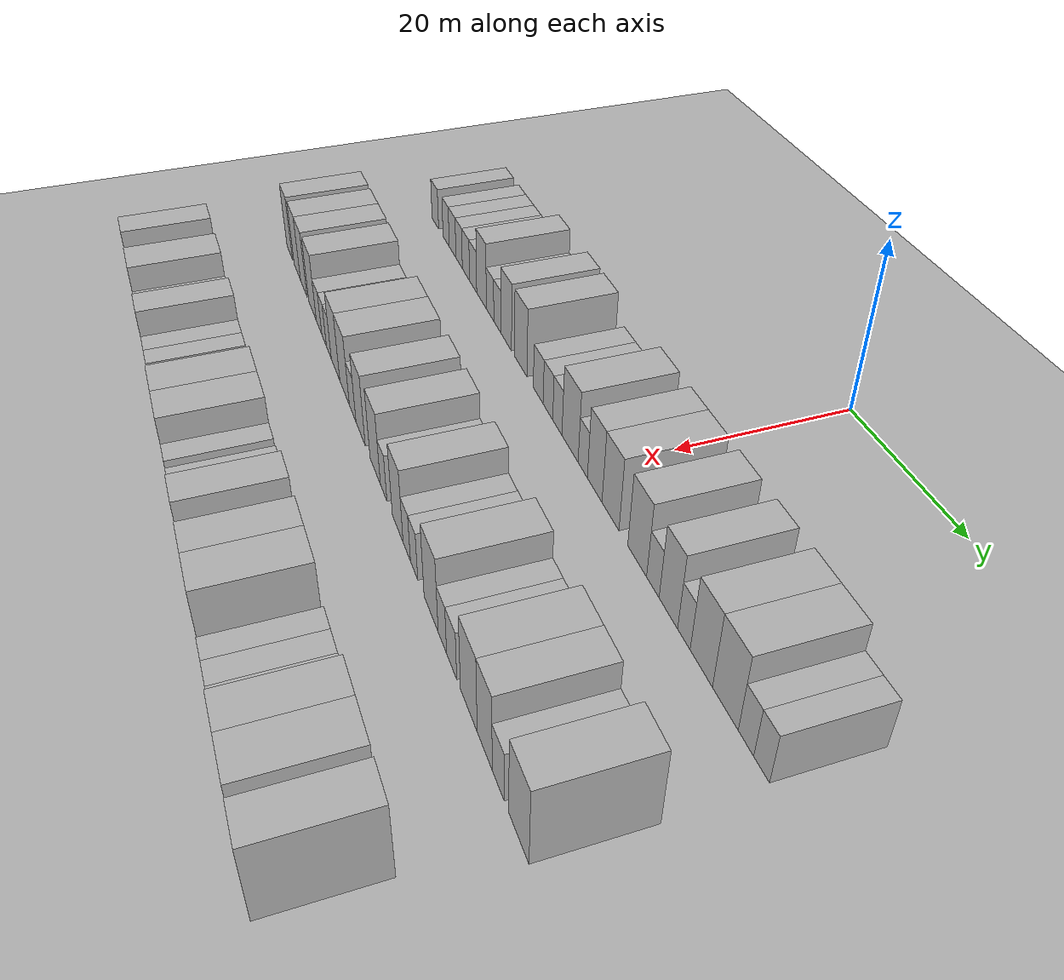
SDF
<sdf version="1.6">
 <world name="default">
  <include><name>ground_plane_1</name><uri>model://HANNAS_ground_plane</uri></include>
  <include>
   <name>ground_plane_2</name>
   <uri>model://HANNAS_ground_plane</uri>
   <pose>100 0 0  0 0 0</pose>
  </include>
  <model name="building_49">
   <static>1</static>
   <pose>25.0000 -50.4573 0 0.000000 0.000000 0.000000</pose>
   <link name="link">
    <pose>0 0 3.00 0 0 0</pose>
    <collision name="collision"><geometry><box><size>10.0000 2.9889 6.0000</size></box></geometry></collision>
    <visual name="visual">
     <cast_shadows>0</cast_shadows>
     <geometry><box><size>10.0000 2.9889 6.0000</size></box></geometry>
     <material>
      <script>
       <uri>model://HANNAS_wall/materials/scripts</uri>
       <uri>model://HANNAS_wall/materials/textures</uri>
       <name>vrc/HANNAS_wall</name>
      </script>
     </material>
    </visual>
   </link>
  </model>
  <model name="building_50">
   <static>1</static>
   <pose>25.0000 -45.6166 0 0.000000 0.000000 0.000000</pose>
   <link name="link">
    <pose>0 0 3.00 0 0 0</pose>
    <collision name="collision"><geometry><box><size>10.0000 2.6924 6.0000</size></box></geometry></collision>
    <visual name="visual">
     <cast_shadows>0</cast_shadows>
     <geometry><box><size>10.0000 2.6924 6.0000</size></box></geometry>
     <material>
      <script>
       <uri>model://HANNAS_wall/materials/scripts</uri>
       <uri>model://HANNAS_wall/materials/textures</uri>
       <name>vrc/HANNAS_wall</name>
      </script>
     </material>
    </visual>
   </link>
  </model>
  <model name="building_51">
   <static>1</static>
   <pose>25.0000 -42.8474 0 0.000000 0.000000 0.000000</pose>
   <link name="link">
    <pose>0 0 3.00 0 0 0</pose>
    <collision name="collision"><geometry><box><size>10.0000 2.8459 6.0000</size></box></geometry></collision>
    <visual name="visual">
     <cast_shadows>0</cast_shadows>
     <geometry><box><size>10.0000 2.8459 6.0000</size></box></geometry>
     <material>
      <script>
       <uri>model://HANNAS_wall/materials/scripts</uri>
       <uri>model://HANNAS_wall/materials/textures</uri>
       <name>vrc/HANNAS_wall</name>
      </script>
     </material>
    </visual>
   </link>
  </model>
  <model name="building_52">
   <static>1</static>
   <pose>25.0000 -40.1089 0 0.000000 0.000000 0.000000</pose>
   <link name="link">
    <pose>0 0 3.00 0 0 0</pose>
    <collision name="collision"><geometry><box><size>10.0000 2.6312 6.0000</size></box></geometry></collision>
    <visual name="visual">
     <cast_shadows>0</cast_shadows>
     <geometry><box><size>10.0000 2.6312 6.0000</size></box></geometry>
     <material>
      <script>
       <uri>model://HANNAS_wall/materials/scripts</uri>
       <uri>model://HANNAS_wall/materials/textures</uri>
       <name>vrc/HANNAS_wall</name>
      </script>
     </material>
    </visual>
   </link>
  </model>
  <model name="building_53">
   <static>1</static>
   <pose>25.0000 -37.3499 0 0.000000 0.000000 0.000000</pose>
   <link name="link">
    <pose>0 0 3.00 0 0 0</pose>
    <collision name="collision"><geometry><box><size>10.0000 2.8868 6.0000</size></box></geometry></collision>
    <visual name="visual">
     <cast_shadows>0</cast_shadows>
     <geometry><box><size>10.0000 2.8868 6.0000</size></box></geometry>
     <material>
      <script>
       <uri>model://HANNAS_wall/materials/scripts</uri>
       <uri>model://HANNAS_wall/materials/textures</uri>
       <name>vrc/HANNAS_wall</name>
      </script>
     </material>
    </visual>
   </link>
  </model>
  <model name="building_54">
   <static>1</static>
   <pose>25.0000 -34.5141 0 0.000000 0.000000 0.000000</pose>
   <link name="link">
    <pose>0 0 3.00 0 0 0</pose>
    <collision name="collision"><geometry><box><size>10.0000 2.7847 6.0000</size></box></geometry></collision>
    <visual name="visual">
     <cast_shadows>0</cast_shadows>
     <geometry><box><size>10.0000 2.7847 6.0000</size></box></geometry>
     <material>
      <script>
       <uri>model://HANNAS_wall/materials/scripts</uri>
       <uri>model://HANNAS_wall/materials/textures</uri>
       <name>vrc/HANNAS_wall</name>
      </script>
     </material>
    </visual>
   </link>
  </model>
  <model name="building_55">
   <static>1</static>
   <pose>25.0000 -31.3079 0 0.000000 0.000000 0.000000</pose>
   <link name="link">
    <pose>0 0 4.50 0 0 0</pose>
    <collision name="collision"><geometry><box><size>10.0000 3.6278 9.0000</size></box></geometry></collision>
    <visual name="visual">
     <cast_shadows>0</cast_shadows>
     <geometry><box><size>10.0000 3.6278 9.0000</size></box></geometry>
     <material>
      <script>
       <uri>model://HANNAS_wall/materials/scripts</uri>
       <uri>model://HANNAS_wall/materials/textures</uri>
       <name>vrc/HANNAS_wall</name>
      </script>
     </material>
    </visual>
   </link>
  </model>
  <model name="building_56">
   <static>1</static>
   <pose>25.0000 -28.1393 0 0.000000 0.000000 0.000000</pose>
   <link name="link">
    <pose>0 0 3.00 0 0 0</pose>
    <collision name="collision"><geometry><box><size>10.0000 2.7095 6.0000</size></box></geometry></collision>
    <visual name="visual">
     <cast_shadows>0</cast_shadows>
     <geometry><box><size>10.0000 2.7095 6.0000</size></box></geometry>
     <material>
      <script>
       <uri>model://HANNAS_wall/materials/scripts</uri>
       <uri>model://HANNAS_wall/materials/textures</uri>
       <name>vrc/HANNAS_wall</name>
      </script>
     </material>
    </visual>
   </link>
  </model>
  <model name="building_57">
   <static>1</static>
   <pose>25.0000 -25.5519 0 0.000000 0.000000 0.000000</pose>
   <link name="link">
    <pose>0 0 3.00 0 0 0</pose>
    <collision name="collision"><geometry><box><size>10.0000 2.4653 6.0000</size></box></geometry></collision>
    <visual name="visual">
     <cast_shadows>0</cast_shadows>
     <geometry><box><size>10.0000 2.4653 6.0000</size></box></geometry>
     <material>
      <script>
       <uri>model://HANNAS_wall/materials/scripts</uri>
       <uri>model://HANNAS_wall/materials/textures</uri>
       <name>vrc/HANNAS_wall</name>
      </script>
     </material>
    </visual>
   </link>
  </model>
  <model name="building_58">
   <static>1</static>
   <pose>25.0000 -22.4851 0 0.000000 0.000000 0.000000</pose>
   <link name="link">
    <pose>0 0 4.50 0 0 0</pose>
    <collision name="collision"><geometry><box><size>10.0000 3.6683 9.0000</size></box></geometry></collision>
    <visual name="visual">
     <cast_shadows>0</cast_shadows>
     <geometry><box><size>10.0000 3.6683 9.0000</size></box></geometry>
     <material>
      <script>
       <uri>model://HANNAS_wall/materials/scripts</uri>
       <uri>model://HANNAS_wall/materials/textures</uri>
       <name>vrc/HANNAS_wall</name>
      </script>
     </material>
    </visual>
   </link>
  </model>
  <model name="building_59">
   <static>1</static>
   <pose>25.0000 -17.6290 0 0.000000 0.000000 0.000000</pose>
   <link name="link">
    <pose>0 0 4.50 0 0 0</pose>
    <collision name="collision"><geometry><box><size>10.0000 4.0440 9.0000</size></box></geometry></collision>
    <visual name="visual">
     <cast_shadows>0</cast_shadows>
     <geometry><box><size>10.0000 4.0440 9.0000</size></box></geometry>
     <material>
      <script>
       <uri>model://HANNAS_wall/materials/scripts</uri>
       <uri>model://HANNAS_wall/materials/textures</uri>
       <name>vrc/HANNAS_wall</name>
      </script>
     </material>
    </visual>
   </link>
  </model>
  <model name="building_60">
   <static>1</static>
   <pose>25.0000 -12.1209 0 0.000000 0.000000 0.000000</pose>
   <link name="link">
    <pose>0 0 3.00 0 0 0</pose>
    <collision name="collision"><geometry><box><size>10.0000 2.9723 6.0000</size></box></geometry></collision>
    <visual name="visual">
     <cast_shadows>0</cast_shadows>
     <geometry><box><size>10.0000 2.9723 6.0000</size></box></geometry>
     <material>
      <script>
       <uri>model://HANNAS_wall/materials/scripts</uri>
       <uri>model://HANNAS_wall/materials/textures</uri>
       <name>vrc/HANNAS_wall</name>
      </script>
     </material>
    </visual>
   </link>
  </model>
  <model name="building_61">
   <static>1</static>
   <pose>25.0000 -9.2199 0 0.000000 0.000000 0.000000</pose>
   <link name="link">
    <pose>0 0 3.00 0 0 0</pose>
    <collision name="collision"><geometry><box><size>10.0000 2.8297 6.0000</size></box></geometry></collision>
    <visual name="visual">
     <cast_shadows>0</cast_shadows>
     <geometry><box><size>10.0000 2.8297 6.0000</size></box></geometry>
     <material>
      <script>
       <uri>model://HANNAS_wall/materials/scripts</uri>
       <uri>model://HANNAS_wall/materials/textures</uri>
       <name>vrc/HANNAS_wall</name>
      </script>
     </material>
    </visual>
   </link>
  </model>
  <model name="building_62">
   <static>1</static>
   <pose>25.0000 -6.4942 0 0.000000 0.000000 0.000000</pose>
   <link name="link">
    <pose>0 0 3.00 0 0 0</pose>
    <collision name="collision"><geometry><box><size>10.0000 2.6217 6.0000</size></box></geometry></collision>
    <visual name="visual">
     <cast_shadows>0</cast_shadows>
     <geometry><box><size>10.0000 2.6217 6.0000</size></box></geometry>
     <material>
      <script>
       <uri>model://HANNAS_wall/materials/scripts</uri>
       <uri>model://HANNAS_wall/materials/textures</uri>
       <name>vrc/HANNAS_wall</name>
      </script>
     </material>
    </visual>
   </link>
  </model>
  <model name="building_63">
   <static>1</static>
   <pose>25.0000 -2.9766 0 0.000000 0.000000 0.000000</pose>
   <link name="link">
    <pose>0 0 4.50 0 0 0</pose>
    <collision name="collision"><geometry><box><size>10.0000 4.4134 9.0000</size></box></geometry></collision>
    <visual name="visual">
     <cast_shadows>0</cast_shadows>
     <geometry><box><size>10.0000 4.4134 9.0000</size></box></geometry>
     <material>
      <script>
       <uri>model://HANNAS_wall/materials/scripts</uri>
       <uri>model://HANNAS_wall/materials/textures</uri>
       <name>vrc/HANNAS_wall</name>
      </script>
     </material>
    </visual>
   </link>
  </model>
  <model name="building_64">
   <static>1</static>
   <pose>25.0000 0.4351 0 0.000000 0.000000 0.000000</pose>
   <link name="link">
    <pose>0 0 3.00 0 0 0</pose>
    <collision name="collision"><geometry><box><size>10.0000 2.4101 6.0000</size></box></geometry></collision>
    <visual name="visual">
     <cast_shadows>0</cast_shadows>
     <geometry><box><size>10.0000 2.4101 6.0000</size></box></geometry>
     <material>
      <script>
       <uri>model://HANNAS_wall/materials/scripts</uri>
       <uri>model://HANNAS_wall/materials/textures</uri>
       <name>vrc/HANNAS_wall</name>
      </script>
     </material>
    </visual>
   </link>
  </model>
  <model name="building_65">
   <static>1</static>
   <pose>25.0000 3.4780 0 0.000000 0.000000 0.000000</pose>
   <link name="link">
    <pose>0 0 4.50 0 0 0</pose>
    <collision name="collision"><geometry><box><size>10.0000 3.6757 9.0000</size></box></geometry></collision>
    <visual name="visual">
     <cast_shadows>0</cast_shadows>
     <geometry><box><size>10.0000 3.6757 9.0000</size></box></geometry>
     <material>
      <script>
       <uri>model://HANNAS_wall/materials/scripts</uri>
       <uri>model://HANNAS_wall/materials/textures</uri>
       <name>vrc/HANNAS_wall</name>
      </script>
     </material>
    </visual>
   </link>
  </model>
  <model name="building_66">
   <static>1</static>
   <pose>25.0000 7.3419 0 0.000000 0.000000 0.000000</pose>
   <link name="link">
    <pose>0 0 4.50 0 0 0</pose>
    <collision name="collision"><geometry><box><size>10.0000 4.0522 9.0000</size></box></geometry></collision>
    <visual name="visual">
     <cast_shadows>0</cast_shadows>
     <geometry><box><size>10.0000 4.0522 9.0000</size></box></geometry>
     <material>
      <script>
       <uri>model://HANNAS_wall/materials/scripts</uri>
       <uri>model://HANNAS_wall/materials/textures</uri>
       <name>vrc/HANNAS_wall</name>
      </script>
     </material>
    </visual>
   </link>
  </model>
  <model name="building_67">
   <static>1</static>
   <pose>25.0000 13.4419 0 0.000000 0.000000 0.000000</pose>
   <link name="link">
    <pose>0 0 4.50 0 0 0</pose>
    <collision name="collision"><geometry><box><size>10.0000 4.1477 9.0000</size></box></geometry></collision>
    <visual name="visual">
     <cast_shadows>0</cast_shadows>
     <geometry><box><size>10.0000 4.1477 9.0000</size></box></geometry>
     <material>
      <script>
       <uri>model://HANNAS_wall/materials/scripts</uri>
       <uri>model://HANNAS_wall/materials/textures</uri>
       <name>vrc/HANNAS_wall</name>
      </script>
     </material>
    </visual>
   </link>
  </model>
  <model name="building_68">
   <static>1</static>
   <pose>25.0000 16.8241 0 0.000000 0.000000 0.000000</pose>
   <link name="link">
    <pose>0 0 3.00 0 0 0</pose>
    <collision name="collision"><geometry><box><size>10.0000 2.6167 6.0000</size></box></geometry></collision>
    <visual name="visual">
     <cast_shadows>0</cast_shadows>
     <geometry><box><size>10.0000 2.6167 6.0000</size></box></geometry>
     <material>
      <script>
       <uri>model://HANNAS_wall/materials/scripts</uri>
       <uri>model://HANNAS_wall/materials/textures</uri>
       <name>vrc/HANNAS_wall</name>
      </script>
     </material>
    </visual>
   </link>
  </model>
  <model name="building_69">
   <static>1</static>
   <pose>25.0000 19.9819 0 0.000000 0.000000 0.000000</pose>
   <link name="link">
    <pose>0 0 4.50 0 0 0</pose>
    <collision name="collision"><geometry><box><size>10.0000 3.6989 9.0000</size></box></geometry></collision>
    <visual name="visual">
     <cast_shadows>0</cast_shadows>
     <geometry><box><size>10.0000 3.6989 9.0000</size></box></geometry>
     <material>
      <script>
       <uri>model://HANNAS_wall/materials/scripts</uri>
       <uri>model://HANNAS_wall/materials/textures</uri>
       <name>vrc/HANNAS_wall</name>
      </script>
     </material>
    </visual>
   </link>
  </model>
  <model name="building_70">
   <static>1</static>
   <pose>25.0000 23.0336 0 0.000000 0.000000 0.000000</pose>
   <link name="link">
    <pose>0 0 3.00 0 0 0</pose>
    <collision name="collision"><geometry><box><size>10.0000 2.4045 6.0000</size></box></geometry></collision>
    <visual name="visual">
     <cast_shadows>0</cast_shadows>
     <geometry><box><size>10.0000 2.4045 6.0000</size></box></geometry>
     <material>
      <script>
       <uri>model://HANNAS_wall/materials/scripts</uri>
       <uri>model://HANNAS_wall/materials/textures</uri>
       <name>vrc/HANNAS_wall</name>
      </script>
     </material>
    </visual>
   </link>
  </model>
  <model name="building_71">
   <static>1</static>
   <pose>25.0000 26.2695 0 0.000000 0.000000 0.000000</pose>
   <link name="link">
    <pose>0 0 4.50 0 0 0</pose>
    <collision name="collision"><geometry><box><size>10.0000 4.0673 9.0000</size></box></geometry></collision>
    <visual name="visual">
     <cast_shadows>0</cast_shadows>
     <geometry><box><size>10.0000 4.0673 9.0000</size></box></geometry>
     <material>
      <script>
       <uri>model://HANNAS_wall/materials/scripts</uri>
       <uri>model://HANNAS_wall/materials/textures</uri>
       <name>vrc/HANNAS_wall</name>
      </script>
     </material>
    </visual>
   </link>
  </model>
  <model name="building_72">
   <static>1</static>
   <pose>25.0000 30.5044 0 0.000000 0.000000 0.000000</pose>
   <link name="link">
    <pose>0 0 4.50 0 0 0</pose>
    <collision name="collision"><geometry><box><size>10.0000 4.4026 9.0000</size></box></geometry></collision>
    <visual name="visual">
     <cast_shadows>0</cast_shadows>
     <geometry><box><size>10.0000 4.4026 9.0000</size></box></geometry>
     <material>
      <script>
       <uri>model://HANNAS_wall/materials/scripts</uri>
       <uri>model://HANNAS_wall/materials/textures</uri>
       <name>vrc/HANNAS_wall</name>
      </script>
     </material>
    </visual>
   </link>
  </model>
  <model name="building_73">
   <static>1</static>
   <pose>25.0000 33.9564 0 0.000000 0.000000 0.000000</pose>
   <link name="link">
    <pose>0 0 3.00 0 0 0</pose>
    <collision name="collision"><geometry><box><size>10.0000 2.5014 6.0000</size></box></geometry></collision>
    <visual name="visual">
     <cast_shadows>0</cast_shadows>
     <geometry><box><size>10.0000 2.5014 6.0000</size></box></geometry>
     <material>
      <script>
       <uri>model://HANNAS_wall/materials/scripts</uri>
       <uri>model://HANNAS_wall/materials/textures</uri>
       <name>vrc/HANNAS_wall</name>
      </script>
     </material>
    </visual>
   </link>
  </model>
  <model name="building_74">
   <static>1</static>
   <pose>25.0000 36.4383 0 0.000000 0.000000 0.000000</pose>
   <link name="link">
    <pose>0 0 3.00 0 0 0</pose>
    <collision name="collision"><geometry><box><size>10.0000 2.4623 6.0000</size></box></geometry></collision>
    <visual name="visual">
     <cast_shadows>0</cast_shadows>
     <geometry><box><size>10.0000 2.4623 6.0000</size></box></geometry>
     <material>
      <script>
       <uri>model://HANNAS_wall/materials/scripts</uri>
       <uri>model://HANNAS_wall/materials/textures</uri>
       <name>vrc/HANNAS_wall</name>
      </script>
     </material>
    </visual>
   </link>
  </model>
  <model name="building_169">
   <static>1</static>
   <pose>44.0000 -49.0976 0 0.000000 0.000000 0.000000</pose>
   <link name="link">
    <pose>0 0 4.50 0 0 0</pose>
    <collision name="collision"><geometry><box><size>10.0000 3.6765 9.0000</size></box></geometry></collision>
    <visual name="visual">
     <cast_shadows>0</cast_shadows>
     <geometry><box><size>10.0000 3.6765 9.0000</size></box></geometry>
     <material>
      <script>
       <uri>model://HANNAS_wall/materials/scripts</uri>
       <uri>model://HANNAS_wall/materials/textures</uri>
       <name>vrc/HANNAS_wall</name>
      </script>
     </material>
    </visual>
   </link>
  </model>
  <model name="building_170">
   <static>1</static>
   <pose>44.0000 -44.3065 0 0.000000 0.000000 0.000000</pose>
   <link name="link">
    <pose>0 0 4.50 0 0 0</pose>
    <collision name="collision"><geometry><box><size>10.0000 3.9057 9.0000</size></box></geometry></collision>
    <visual name="visual">
     <cast_shadows>0</cast_shadows>
     <geometry><box><size>10.0000 3.9057 9.0000</size></box></geometry>
     <material>
      <script>
       <uri>model://HANNAS_wall/materials/scripts</uri>
       <uri>model://HANNAS_wall/materials/textures</uri>
       <name>vrc/HANNAS_wall</name>
      </script>
     </material>
    </visual>
   </link>
  </model>
  <model name="building_171">
   <static>1</static>
   <pose>44.0000 -40.4272 0 0.000000 0.000000 0.000000</pose>
   <link name="link">
    <pose>0 0 4.50 0 0 0</pose>
    <collision name="collision"><geometry><box><size>10.0000 3.8528 9.0000</size></box></geometry></collision>
    <visual name="visual">
     <cast_shadows>0</cast_shadows>
     <geometry><box><size>10.0000 3.8528 9.0000</size></box></geometry>
     <material>
      <script>
       <uri>model://HANNAS_wall/materials/scripts</uri>
       <uri>model://HANNAS_wall/materials/textures</uri>
       <name>vrc/HANNAS_wall</name>
      </script>
     </material>
    </visual>
   </link>
  </model>
  <model name="building_172">
   <static>1</static>
   <pose>44.0000 -35.3780 0 0.000000 0.000000 0.000000</pose>
   <link name="link">
    <pose>0 0 4.50 0 0 0</pose>
    <collision name="collision"><geometry><box><size>10.0000 4.2457 9.0000</size></box></geometry></collision>
    <visual name="visual">
     <cast_shadows>0</cast_shadows>
     <geometry><box><size>10.0000 4.2457 9.0000</size></box></geometry>
     <material>
      <script>
       <uri>model://HANNAS_wall/materials/scripts</uri>
       <uri>model://HANNAS_wall/materials/textures</uri>
       <name>vrc/HANNAS_wall</name>
      </script>
     </material>
    </visual>
   </link>
  </model>
  <model name="building_173">
   <static>1</static>
   <pose>44.0000 -31.7881 0 0.000000 0.000000 0.000000</pose>
   <link name="link">
    <pose>0 0 3.00 0 0 0</pose>
    <collision name="collision"><geometry><box><size>10.0000 2.9340 6.0000</size></box></geometry></collision>
    <visual name="visual">
     <cast_shadows>0</cast_shadows>
     <geometry><box><size>10.0000 2.9340 6.0000</size></box></geometry>
     <material>
      <script>
       <uri>model://HANNAS_wall/materials/scripts</uri>
       <uri>model://HANNAS_wall/materials/textures</uri>
       <name>vrc/HANNAS_wall</name>
      </script>
     </material>
    </visual>
   </link>
  </model>
  <model name="building_174">
   <static>1</static>
   <pose>44.0000 -29.1124 0 0.000000 0.000000 0.000000</pose>
   <link name="link">
    <pose>0 0 3.00 0 0 0</pose>
    <collision name="collision"><geometry><box><size>10.0000 2.4173 6.0000</size></box></geometry></collision>
    <visual name="visual">
     <cast_shadows>0</cast_shadows>
     <geometry><box><size>10.0000 2.4173 6.0000</size></box></geometry>
     <material>
      <script>
       <uri>model://HANNAS_wall/materials/scripts</uri>
       <uri>model://HANNAS_wall/materials/textures</uri>
       <name>vrc/HANNAS_wall</name>
      </script>
     </material>
    </visual>
   </link>
  </model>
  <model name="building_175">
   <static>1</static>
   <pose>44.0000 -26.6529 0 0.000000 0.000000 0.000000</pose>
   <link name="link">
    <pose>0 0 3.00 0 0 0</pose>
    <collision name="collision"><geometry><box><size>10.0000 2.5016 6.0000</size></box></geometry></collision>
    <visual name="visual">
     <cast_shadows>0</cast_shadows>
     <geometry><box><size>10.0000 2.5016 6.0000</size></box></geometry>
     <material>
      <script>
       <uri>model://HANNAS_wall/materials/scripts</uri>
       <uri>model://HANNAS_wall/materials/textures</uri>
       <name>vrc/HANNAS_wall</name>
      </script>
     </material>
    </visual>
   </link>
  </model>
  <model name="building_176">
   <static>1</static>
   <pose>44.0000 -23.3039 0 0.000000 0.000000 0.000000</pose>
   <link name="link">
    <pose>0 0 4.50 0 0 0</pose>
    <collision name="collision"><geometry><box><size>10.0000 4.1965 9.0000</size></box></geometry></collision>
    <visual name="visual">
     <cast_shadows>0</cast_shadows>
     <geometry><box><size>10.0000 4.1965 9.0000</size></box></geometry>
     <material>
      <script>
       <uri>model://HANNAS_wall/materials/scripts</uri>
       <uri>model://HANNAS_wall/materials/textures</uri>
       <name>vrc/HANNAS_wall</name>
      </script>
     </material>
    </visual>
   </link>
  </model>
  <model name="building_177">
   <static>1</static>
   <pose>44.0000 -18.9837 0 0.000000 0.000000 0.000000</pose>
   <link name="link">
    <pose>0 0 4.50 0 0 0</pose>
    <collision name="collision"><geometry><box><size>10.0000 4.4437 9.0000</size></box></geometry></collision>
    <visual name="visual">
     <cast_shadows>0</cast_shadows>
     <geometry><box><size>10.0000 4.4437 9.0000</size></box></geometry>
     <material>
      <script>
       <uri>model://HANNAS_wall/materials/scripts</uri>
       <uri>model://HANNAS_wall/materials/textures</uri>
       <name>vrc/HANNAS_wall</name>
      </script>
     </material>
    </visual>
   </link>
  </model>
  <model name="building_178">
   <static>1</static>
   <pose>44.0000 -15.2755 0 0.000000 0.000000 0.000000</pose>
   <link name="link">
    <pose>0 0 3.00 0 0 0</pose>
    <collision name="collision"><geometry><box><size>10.0000 2.9728 6.0000</size></box></geometry></collision>
    <visual name="visual">
     <cast_shadows>0</cast_shadows>
     <geometry><box><size>10.0000 2.9728 6.0000</size></box></geometry>
     <material>
      <script>
       <uri>model://HANNAS_wall/materials/scripts</uri>
       <uri>model://HANNAS_wall/materials/textures</uri>
       <name>vrc/HANNAS_wall</name>
      </script>
     </material>
    </visual>
   </link>
  </model>
  <model name="building_179">
   <static>1</static>
   <pose>44.0000 -11.8035 0 0.000000 0.000000 0.000000</pose>
   <link name="link">
    <pose>0 0 4.50 0 0 0</pose>
    <collision name="collision"><geometry><box><size>10.0000 3.9712 9.0000</size></box></geometry></collision>
    <visual name="visual">
     <cast_shadows>0</cast_shadows>
     <geometry><box><size>10.0000 3.9712 9.0000</size></box></geometry>
     <material>
      <script>
       <uri>model://HANNAS_wall/materials/scripts</uri>
       <uri>model://HANNAS_wall/materials/textures</uri>
       <name>vrc/HANNAS_wall</name>
      </script>
     </material>
    </visual>
   </link>
  </model>
  <model name="building_180">
   <static>1</static>
   <pose>44.0000 -5.7578 0 0.000000 0.000000 0.000000</pose>
   <link name="link">
    <pose>0 0 4.50 0 0 0</pose>
    <collision name="collision"><geometry><box><size>10.0000 4.1202 9.0000</size></box></geometry></collision>
    <visual name="visual">
     <cast_shadows>0</cast_shadows>
     <geometry><box><size>10.0000 4.1202 9.0000</size></box></geometry>
     <material>
      <script>
       <uri>model://HANNAS_wall/materials/scripts</uri>
       <uri>model://HANNAS_wall/materials/textures</uri>
       <name>vrc/HANNAS_wall</name>
      </script>
     </material>
    </visual>
   </link>
  </model>
  <model name="building_181">
   <static>1</static>
   <pose>44.0000 -2.4677 0 0.000000 0.000000 0.000000</pose>
   <link name="link">
    <pose>0 0 3.00 0 0 0</pose>
    <collision name="collision"><geometry><box><size>10.0000 2.4599 6.0000</size></box></geometry></collision>
    <visual name="visual">
     <cast_shadows>0</cast_shadows>
     <geometry><box><size>10.0000 2.4599 6.0000</size></box></geometry>
     <material>
      <script>
       <uri>model://HANNAS_wall/materials/scripts</uri>
       <uri>model://HANNAS_wall/materials/textures</uri>
       <name>vrc/HANNAS_wall</name>
      </script>
     </material>
    </visual>
   </link>
  </model>
  <model name="building_182">
   <static>1</static>
   <pose>44.0000 2.6746 0 0.000000 0.000000 0.000000</pose>
   <link name="link">
    <pose>0 0 4.50 0 0 0</pose>
    <collision name="collision"><geometry><box><size>10.0000 3.8248 9.0000</size></box></geometry></collision>
    <visual name="visual">
     <cast_shadows>0</cast_shadows>
     <geometry><box><size>10.0000 3.8248 9.0000</size></box></geometry>
     <material>
      <script>
       <uri>model://HANNAS_wall/materials/scripts</uri>
       <uri>model://HANNAS_wall/materials/textures</uri>
       <name>vrc/HANNAS_wall</name>
      </script>
     </material>
    </visual>
   </link>
  </model>
  <model name="building_183">
   <static>1</static>
   <pose>44.0000 5.8432 0 0.000000 0.000000 0.000000</pose>
   <link name="link">
    <pose>0 0 3.00 0 0 0</pose>
    <collision name="collision"><geometry><box><size>10.0000 2.5123 6.0000</size></box></geometry></collision>
    <visual name="visual">
     <cast_shadows>0</cast_shadows>
     <geometry><box><size>10.0000 2.5123 6.0000</size></box></geometry>
     <material>
      <script>
       <uri>model://HANNAS_wall/materials/scripts</uri>
       <uri>model://HANNAS_wall/materials/textures</uri>
       <name>vrc/HANNAS_wall</name>
      </script>
     </material>
    </visual>
   </link>
  </model>
  <model name="building_184">
   <static>1</static>
   <pose>44.0000 8.3111 0 0.000000 0.000000 0.000000</pose>
   <link name="link">
    <pose>0 0 3.00 0 0 0</pose>
    <collision name="collision"><geometry><box><size>10.0000 2.4236 6.0000</size></box></geometry></collision>
    <visual name="visual">
     <cast_shadows>0</cast_shadows>
     <geometry><box><size>10.0000 2.4236 6.0000</size></box></geometry>
     <material>
      <script>
       <uri>model://HANNAS_wall/materials/scripts</uri>
       <uri>model://HANNAS_wall/materials/textures</uri>
       <name>vrc/HANNAS_wall</name>
      </script>
     </material>
    </visual>
   </link>
  </model>
  <model name="building_185">
   <static>1</static>
   <pose>44.0000 13.6751 0 0.000000 0.000000 0.000000</pose>
   <link name="link">
    <pose>0 0 4.50 0 0 0</pose>
    <collision name="collision"><geometry><box><size>10.0000 4.3044 9.0000</size></box></geometry></collision>
    <visual name="visual">
     <cast_shadows>0</cast_shadows>
     <geometry><box><size>10.0000 4.3044 9.0000</size></box></geometry>
     <material>
      <script>
       <uri>model://HANNAS_wall/materials/scripts</uri>
       <uri>model://HANNAS_wall/materials/textures</uri>
       <name>vrc/HANNAS_wall</name>
      </script>
     </material>
    </visual>
   </link>
  </model>
  <model name="building_186">
   <static>1</static>
   <pose>44.0000 17.0496 0 0.000000 0.000000 0.000000</pose>
   <link name="link">
    <pose>0 0 3.00 0 0 0</pose>
    <collision name="collision"><geometry><box><size>10.0000 2.4447 6.0000</size></box></geometry></collision>
    <visual name="visual">
     <cast_shadows>0</cast_shadows>
     <geometry><box><size>10.0000 2.4447 6.0000</size></box></geometry>
     <material>
      <script>
       <uri>model://HANNAS_wall/materials/scripts</uri>
       <uri>model://HANNAS_wall/materials/textures</uri>
       <name>vrc/HANNAS_wall</name>
      </script>
     </material>
    </visual>
   </link>
  </model>
  <model name="building_187">
   <static>1</static>
   <pose>44.0000 19.6888 0 0.000000 0.000000 0.000000</pose>
   <link name="link">
    <pose>0 0 3.00 0 0 0</pose>
    <collision name="collision"><geometry><box><size>10.0000 2.8337 6.0000</size></box></geometry></collision>
    <visual name="visual">
     <cast_shadows>0</cast_shadows>
     <geometry><box><size>10.0000 2.8337 6.0000</size></box></geometry>
     <material>
      <script>
       <uri>model://HANNAS_wall/materials/scripts</uri>
       <uri>model://HANNAS_wall/materials/textures</uri>
       <name>vrc/HANNAS_wall</name>
      </script>
     </material>
    </visual>
   </link>
  </model>
  <model name="building_188">
   <static>1</static>
   <pose>44.0000 24.2760 0 0.000000 0.000000 0.000000</pose>
   <link name="link">
    <pose>0 0 4.50 0 0 0</pose>
    <collision name="collision"><geometry><box><size>10.0000 4.3407 9.0000</size></box></geometry></collision>
    <visual name="visual">
     <cast_shadows>0</cast_shadows>
     <geometry><box><size>10.0000 4.3407 9.0000</size></box></geometry>
     <material>
      <script>
       <uri>model://HANNAS_wall/materials/scripts</uri>
       <uri>model://HANNAS_wall/materials/textures</uri>
       <name>vrc/HANNAS_wall</name>
      </script>
     </material>
    </visual>
   </link>
  </model>
  <model name="building_189">
   <static>1</static>
   <pose>44.0000 28.2783 0 0.000000 0.000000 0.000000</pose>
   <link name="link">
    <pose>0 0 4.50 0 0 0</pose>
    <collision name="collision"><geometry><box><size>10.0000 3.6640 9.0000</size></box></geometry></collision>
    <visual name="visual">
     <cast_shadows>0</cast_shadows>
     <geometry><box><size>10.0000 3.6640 9.0000</size></box></geometry>
     <material>
      <script>
       <uri>model://HANNAS_wall/materials/scripts</uri>
       <uri>model://HANNAS_wall/materials/textures</uri>
       <name>vrc/HANNAS_wall</name>
      </script>
     </material>
    </visual>
   </link>
  </model>
  <model name="building_190">
   <static>1</static>
   <pose>44.0000 31.4995 0 0.000000 0.000000 0.000000</pose>
   <link name="link">
    <pose>0 0 3.00 0 0 0</pose>
    <collision name="collision"><geometry><box><size>10.0000 2.7785 6.0000</size></box></geometry></collision>
    <visual name="visual">
     <cast_shadows>0</cast_shadows>
     <geometry><box><size>10.0000 2.7785 6.0000</size></box></geometry>
     <material>
      <script>
       <uri>model://HANNAS_wall/materials/scripts</uri>
       <uri>model://HANNAS_wall/materials/textures</uri>
       <name>vrc/HANNAS_wall</name>
      </script>
     </material>
    </visual>
   </link>
  </model>
  <model name="building_191">
   <static>1</static>
   <pose>44.0000 36.0574 0 0.000000 0.000000 0.000000</pose>
   <link name="link">
    <pose>0 0 4.50 0 0 0</pose>
    <collision name="collision"><geometry><box><size>10.0000 4.3373 9.0000</size></box></geometry></collision>
    <visual name="visual">
     <cast_shadows>0</cast_shadows>
     <geometry><box><size>10.0000 4.3373 9.0000</size></box></geometry>
     <material>
      <script>
       <uri>model://HANNAS_wall/materials/scripts</uri>
       <uri>model://HANNAS_wall/materials/textures</uri>
       <name>vrc/HANNAS_wall</name>
      </script>
     </material>
    </visual>
   </link>
  </model>
  <model name="building_290">
   <static>1</static>
   <pose>63.0000 -46.8684 0 0.000000 0.000000 0.000000</pose>
   <link name="link">
    <pose>0 0 4.50 0 0 0</pose>
    <collision name="collision"><geometry><box><size>10.0000 3.6372 9.0000</size></box></geometry></collision>
    <visual name="visual">
     <cast_shadows>0</cast_shadows>
     <geometry><box><size>10.0000 3.6372 9.0000</size></box></geometry>
     <material>
      <script>
       <uri>model://HANNAS_wall/materials/scripts</uri>
       <uri>model://HANNAS_wall/materials/textures</uri>
       <name>vrc/HANNAS_wall</name>
      </script>
     </material>
    </visual>
   </link>
  </model>
  <model name="building_291">
   <static>1</static>
   <pose>63.0000 -42.7418 0 0.000000 0.000000 0.000000</pose>
   <link name="link">
    <pose>0 0 3.00 0 0 0</pose>
    <collision name="collision"><geometry><box><size>10.0000 2.6159 6.0000</size></box></geometry></collision>
    <visual name="visual">
     <cast_shadows>0</cast_shadows>
     <geometry><box><size>10.0000 2.6159 6.0000</size></box></geometry>
     <material>
      <script>
       <uri>model://HANNAS_wall/materials/scripts</uri>
       <uri>model://HANNAS_wall/materials/textures</uri>
       <name>vrc/HANNAS_wall</name>
      </script>
     </material>
    </visual>
   </link>
  </model>
  <model name="building_292">
   <static>1</static>
   <pose>63.0000 -39.1865 0 0.000000 0.000000 0.000000</pose>
   <link name="link">
    <pose>0 0 4.50 0 0 0</pose>
    <collision name="collision"><geometry><box><size>10.0000 4.4947 9.0000</size></box></geometry></collision>
    <visual name="visual">
     <cast_shadows>0</cast_shadows>
     <geometry><box><size>10.0000 4.4947 9.0000</size></box></geometry>
     <material>
      <script>
       <uri>model://HANNAS_wall/materials/scripts</uri>
       <uri>model://HANNAS_wall/materials/textures</uri>
       <name>vrc/HANNAS_wall</name>
      </script>
     </material>
    </visual>
   </link>
  </model>
  <model name="building_293">
   <static>1</static>
   <pose>63.0000 -35.4563 0 0.000000 0.000000 0.000000</pose>
   <link name="link">
    <pose>0 0 3.00 0 0 0</pose>
    <collision name="collision"><geometry><box><size>10.0000 2.9656 6.0000</size></box></geometry></collision>
    <visual name="visual">
     <cast_shadows>0</cast_shadows>
     <geometry><box><size>10.0000 2.9656 6.0000</size></box></geometry>
     <material>
      <script>
       <uri>model://HANNAS_wall/materials/scripts</uri>
       <uri>model://HANNAS_wall/materials/textures</uri>
       <name>vrc/HANNAS_wall</name>
      </script>
     </material>
    </visual>
   </link>
  </model>
  <model name="building_294">
   <static>1</static>
   <pose>63.0000 -32.7272 0 0.000000 0.000000 0.000000</pose>
   <link name="link">
    <pose>0 0 3.00 0 0 0</pose>
    <collision name="collision"><geometry><box><size>10.0000 2.4927 6.0000</size></box></geometry></collision>
    <visual name="visual">
     <cast_shadows>0</cast_shadows>
     <geometry><box><size>10.0000 2.4927 6.0000</size></box></geometry>
     <material>
      <script>
       <uri>model://HANNAS_wall/materials/scripts</uri>
       <uri>model://HANNAS_wall/materials/textures</uri>
       <name>vrc/HANNAS_wall</name>
      </script>
     </material>
    </visual>
   </link>
  </model>
  <model name="building_295">
   <static>1</static>
   <pose>63.0000 -29.6687 0 0.000000 0.000000 0.000000</pose>
   <link name="link">
    <pose>0 0 4.50 0 0 0</pose>
    <collision name="collision"><geometry><box><size>10.0000 3.6243 9.0000</size></box></geometry></collision>
    <visual name="visual">
     <cast_shadows>0</cast_shadows>
     <geometry><box><size>10.0000 3.6243 9.0000</size></box></geometry>
     <material>
      <script>
       <uri>model://HANNAS_wall/materials/scripts</uri>
       <uri>model://HANNAS_wall/materials/textures</uri>
       <name>vrc/HANNAS_wall</name>
      </script>
     </material>
    </visual>
   </link>
  </model>
  <model name="building_296">
   <static>1</static>
   <pose>63.0000 -26.5720 0 0.000000 0.000000 0.000000</pose>
   <link name="link">
    <pose>0 0 3.00 0 0 0</pose>
    <collision name="collision"><geometry><box><size>10.0000 2.5692 6.0000</size></box></geometry></collision>
    <visual name="visual">
     <cast_shadows>0</cast_shadows>
     <geometry><box><size>10.0000 2.5692 6.0000</size></box></geometry>
     <material>
      <script>
       <uri>model://HANNAS_wall/materials/scripts</uri>
       <uri>model://HANNAS_wall/materials/textures</uri>
       <name>vrc/HANNAS_wall</name>
      </script>
     </material>
    </visual>
   </link>
  </model>
  <model name="building_297">
   <static>1</static>
   <pose>63.0000 -24.0478 0 0.000000 0.000000 0.000000</pose>
   <link name="link">
    <pose>0 0 3.00 0 0 0</pose>
    <collision name="collision"><geometry><box><size>10.0000 2.4790 6.0000</size></box></geometry></collision>
    <visual name="visual">
     <cast_shadows>0</cast_shadows>
     <geometry><box><size>10.0000 2.4790 6.0000</size></box></geometry>
     <material>
      <script>
       <uri>model://HANNAS_wall/materials/scripts</uri>
       <uri>model://HANNAS_wall/materials/textures</uri>
       <name>vrc/HANNAS_wall</name>
      </script>
     </material>
    </visual>
   </link>
  </model>
  <model name="building_298">
   <static>1</static>
   <pose>63.0000 -19.4586 0 0.000000 0.000000 0.000000</pose>
   <link name="link">
    <pose>0 0 3.00 0 0 0</pose>
    <collision name="collision"><geometry><box><size>10.0000 2.6995 6.0000</size></box></geometry></collision>
    <visual name="visual">
     <cast_shadows>0</cast_shadows>
     <geometry><box><size>10.0000 2.6995 6.0000</size></box></geometry>
     <material>
      <script>
       <uri>model://HANNAS_wall/materials/scripts</uri>
       <uri>model://HANNAS_wall/materials/textures</uri>
       <name>vrc/HANNAS_wall</name>
      </script>
     </material>
    </visual>
   </link>
  </model>
  <model name="building_299">
   <static>1</static>
   <pose>63.0000 -15.9467 0 0.000000 0.000000 0.000000</pose>
   <link name="link">
    <pose>0 0 4.50 0 0 0</pose>
    <collision name="collision"><geometry><box><size>10.0000 4.3241 9.0000</size></box></geometry></collision>
    <visual name="visual">
     <cast_shadows>0</cast_shadows>
     <geometry><box><size>10.0000 4.3241 9.0000</size></box></geometry>
     <material>
      <script>
       <uri>model://HANNAS_wall/materials/scripts</uri>
       <uri>model://HANNAS_wall/materials/textures</uri>
       <name>vrc/HANNAS_wall</name>
      </script>
     </material>
    </visual>
   </link>
  </model>
  <model name="building_300">
   <static>1</static>
   <pose>63.0000 -11.6164 0 0.000000 0.000000 0.000000</pose>
   <link name="link">
    <pose>0 0 4.50 0 0 0</pose>
    <collision name="collision"><geometry><box><size>10.0000 4.3367 9.0000</size></box></geometry></collision>
    <visual name="visual">
     <cast_shadows>0</cast_shadows>
     <geometry><box><size>10.0000 4.3367 9.0000</size></box></geometry>
     <material>
      <script>
       <uri>model://HANNAS_wall/materials/scripts</uri>
       <uri>model://HANNAS_wall/materials/textures</uri>
       <name>vrc/HANNAS_wall</name>
      </script>
     </material>
    </visual>
   </link>
  </model>
  <model name="building_301">
   <static>1</static>
   <pose>63.0000 -8.1702 0 0.000000 0.000000 0.000000</pose>
   <link name="link">
    <pose>0 0 3.00 0 0 0</pose>
    <collision name="collision"><geometry><box><size>10.0000 2.5557 6.0000</size></box></geometry></collision>
    <visual name="visual">
     <cast_shadows>0</cast_shadows>
     <geometry><box><size>10.0000 2.5557 6.0000</size></box></geometry>
     <material>
      <script>
       <uri>model://HANNAS_wall/materials/scripts</uri>
       <uri>model://HANNAS_wall/materials/textures</uri>
       <name>vrc/HANNAS_wall</name>
      </script>
     </material>
    </visual>
   </link>
  </model>
  <model name="building_302">
   <static>1</static>
   <pose>63.0000 -4.6008 0 0.000000 0.000000 0.000000</pose>
   <link name="link">
    <pose>0 0 3.00 0 0 0</pose>
    <collision name="collision"><geometry><box><size>10.0000 2.5830 6.0000</size></box></geometry></collision>
    <visual name="visual">
     <cast_shadows>0</cast_shadows>
     <geometry><box><size>10.0000 2.5830 6.0000</size></box></geometry>
     <material>
      <script>
       <uri>model://HANNAS_wall/materials/scripts</uri>
       <uri>model://HANNAS_wall/materials/textures</uri>
       <name>vrc/HANNAS_wall</name>
      </script>
     </material>
    </visual>
   </link>
  </model>
  <model name="building_303">
   <static>1</static>
   <pose>63.0000 0.5514 0 0.000000 0.000000 0.000000</pose>
   <link name="link">
    <pose>0 0 4.50 0 0 0</pose>
    <collision name="collision"><geometry><box><size>10.0000 3.7215 9.0000</size></box></geometry></collision>
    <visual name="visual">
     <cast_shadows>0</cast_shadows>
     <geometry><box><size>10.0000 3.7215 9.0000</size></box></geometry>
     <material>
      <script>
       <uri>model://HANNAS_wall/materials/scripts</uri>
       <uri>model://HANNAS_wall/materials/textures</uri>
       <name>vrc/HANNAS_wall</name>
      </script>
     </material>
    </visual>
   </link>
  </model>
  <model name="building_304">
   <static>1</static>
   <pose>63.0000 3.6553 0 0.000000 0.000000 0.000000</pose>
   <link name="link">
    <pose>0 0 3.00 0 0 0</pose>
    <collision name="collision"><geometry><box><size>10.0000 2.4863 6.0000</size></box></geometry></collision>
    <visual name="visual">
     <cast_shadows>0</cast_shadows>
     <geometry><box><size>10.0000 2.4863 6.0000</size></box></geometry>
     <material>
      <script>
       <uri>model://HANNAS_wall/materials/scripts</uri>
       <uri>model://HANNAS_wall/materials/textures</uri>
       <name>vrc/HANNAS_wall</name>
      </script>
     </material>
    </visual>
   </link>
  </model>
  <model name="building_305">
   <static>1</static>
   <pose>63.0000 6.7823 0 0.000000 0.000000 0.000000</pose>
   <link name="link">
    <pose>0 0 4.50 0 0 0</pose>
    <collision name="collision"><geometry><box><size>10.0000 3.7676 9.0000</size></box></geometry></collision>
    <visual name="visual">
     <cast_shadows>0</cast_shadows>
     <geometry><box><size>10.0000 3.7676 9.0000</size></box></geometry>
     <material>
      <script>
       <uri>model://HANNAS_wall/materials/scripts</uri>
       <uri>model://HANNAS_wall/materials/textures</uri>
       <name>vrc/HANNAS_wall</name>
      </script>
     </material>
    </visual>
   </link>
  </model>
  <model name="building_306">
   <static>1</static>
   <pose>63.0000 10.8951 0 0.000000 0.000000 0.000000</pose>
   <link name="link">
    <pose>0 0 4.50 0 0 0</pose>
    <collision name="collision"><geometry><box><size>10.0000 4.4582 9.0000</size></box></geometry></collision>
    <visual name="visual">
     <cast_shadows>0</cast_shadows>
     <geometry><box><size>10.0000 4.4582 9.0000</size></box></geometry>
     <material>
      <script>
       <uri>model://HANNAS_wall/materials/scripts</uri>
       <uri>model://HANNAS_wall/materials/textures</uri>
       <name>vrc/HANNAS_wall</name>
      </script>
     </material>
    </visual>
   </link>
  </model>
  <model name="building_307">
   <static>1</static>
   <pose>63.0000 16.3480 0 0.000000 0.000000 0.000000</pose>
   <link name="link">
    <pose>0 0 3.00 0 0 0</pose>
    <collision name="collision"><geometry><box><size>10.0000 2.4475 6.0000</size></box></geometry></collision>
    <visual name="visual">
     <cast_shadows>0</cast_shadows>
     <geometry><box><size>10.0000 2.4475 6.0000</size></box></geometry>
     <material>
      <script>
       <uri>model://HANNAS_wall/materials/scripts</uri>
       <uri>model://HANNAS_wall/materials/textures</uri>
       <name>vrc/HANNAS_wall</name>
      </script>
     </material>
    </visual>
   </link>
  </model>
  <model name="building_308">
   <static>1</static>
   <pose>63.0000 18.8519 0 0.000000 0.000000 0.000000</pose>
   <link name="link">
    <pose>0 0 3.00 0 0 0</pose>
    <collision name="collision"><geometry><box><size>10.0000 2.5604 6.0000</size></box></geometry></collision>
    <visual name="visual">
     <cast_shadows>0</cast_shadows>
     <geometry><box><size>10.0000 2.5604 6.0000</size></box></geometry>
     <material>
      <script>
       <uri>model://HANNAS_wall/materials/scripts</uri>
       <uri>model://HANNAS_wall/materials/textures</uri>
       <name>vrc/HANNAS_wall</name>
      </script>
     </material>
    </visual>
   </link>
  </model>
  <model name="building_309">
   <static>1</static>
   <pose>63.0000 21.5682 0 0.000000 0.000000 0.000000</pose>
   <link name="link">
    <pose>0 0 3.00 0 0 0</pose>
    <collision name="collision"><geometry><box><size>10.0000 2.8722 6.0000</size></box></geometry></collision>
    <visual name="visual">
     <cast_shadows>0</cast_shadows>
     <geometry><box><size>10.0000 2.8722 6.0000</size></box></geometry>
     <material>
      <script>
       <uri>model://HANNAS_wall/materials/scripts</uri>
       <uri>model://HANNAS_wall/materials/textures</uri>
       <name>vrc/HANNAS_wall</name>
      </script>
     </material>
    </visual>
   </link>
  </model>
  <model name="building_310">
   <static>1</static>
   <pose>63.0000 24.9479 0 0.000000 0.000000 0.000000</pose>
   <link name="link">
    <pose>0 0 4.50 0 0 0</pose>
    <collision name="collision"><geometry><box><size>10.0000 3.8871 9.0000</size></box></geometry></collision>
    <visual name="visual">
     <cast_shadows>0</cast_shadows>
     <geometry><box><size>10.0000 3.8871 9.0000</size></box></geometry>
     <material>
      <script>
       <uri>model://HANNAS_wall/materials/scripts</uri>
       <uri>model://HANNAS_wall/materials/textures</uri>
       <name>vrc/HANNAS_wall</name>
      </script>
     </material>
    </visual>
   </link>
  </model>
  <model name="building_311">
   <static>1</static>
   <pose>63.0000 29.1066 0 0.000000 0.000000 0.000000</pose>
   <link name="link">
    <pose>0 0 4.50 0 0 0</pose>
    <collision name="collision"><geometry><box><size>10.0000 4.4303 9.0000</size></box></geometry></collision>
    <visual name="visual">
     <cast_shadows>0</cast_shadows>
     <geometry><box><size>10.0000 4.4303 9.0000</size></box></geometry>
     <material>
      <script>
       <uri>model://HANNAS_wall/materials/scripts</uri>
       <uri>model://HANNAS_wall/materials/textures</uri>
       <name>vrc/HANNAS_wall</name>
      </script>
     </material>
    </visual>
   </link>
  </model>
  <model name="building_312">
   <static>1</static>
   <pose>63.0000 34.2825 0 0.000000 0.000000 0.000000</pose>
   <link name="link">
    <pose>0 0 4.50 0 0 0</pose>
    <collision name="collision"><geometry><box><size>10.0000 3.9216 9.0000</size></box></geometry></collision>
    <visual name="visual">
     <cast_shadows>0</cast_shadows>
     <geometry><box><size>10.0000 3.9216 9.0000</size></box></geometry>
     <material>
      <script>
       <uri>model://HANNAS_wall/materials/scripts</uri>
       <uri>model://HANNAS_wall/materials/textures</uri>
       <name>vrc/HANNAS_wall</name>
      </script>
     </material>
    </visual>
   </link>
  </model>
 </world>
</sdf>
